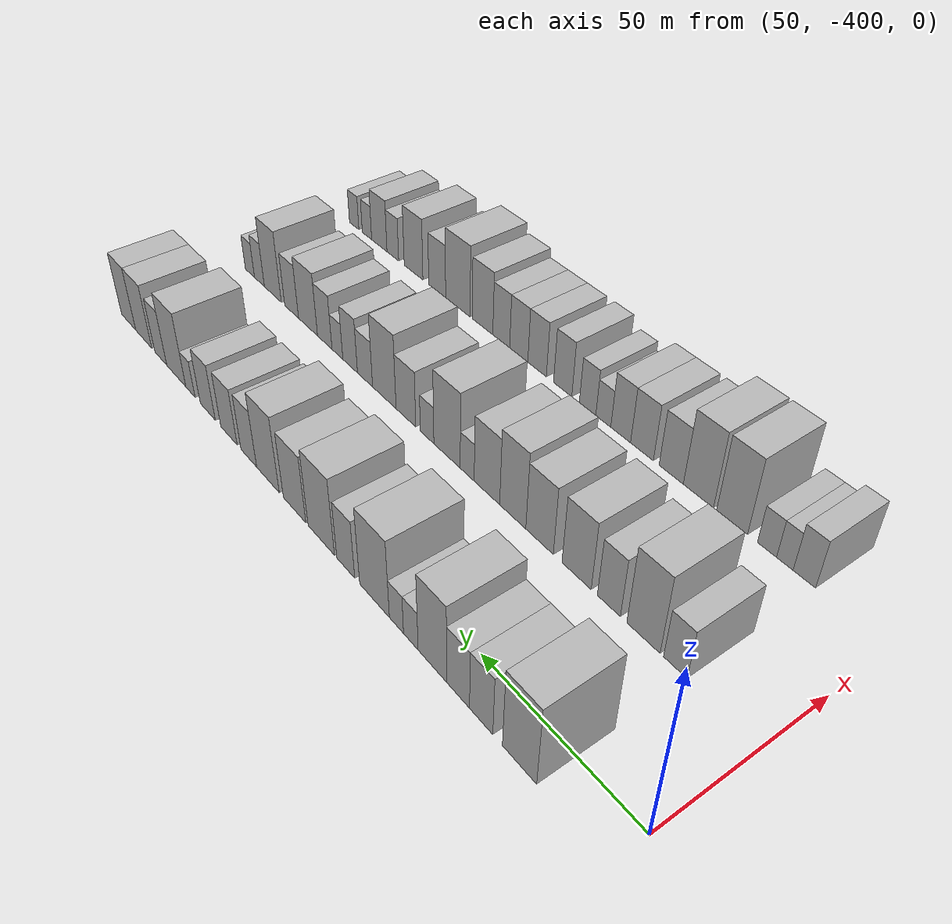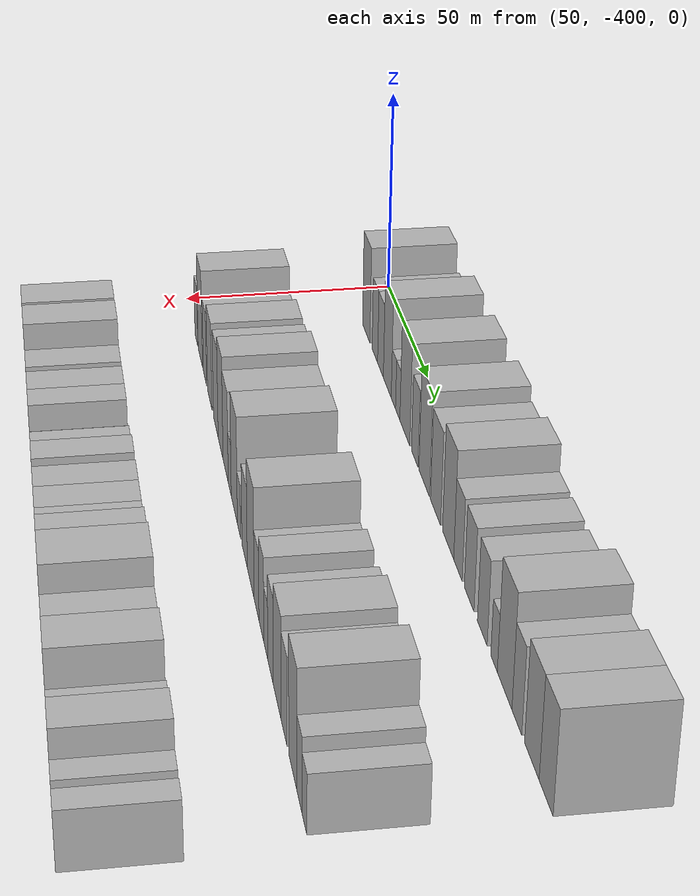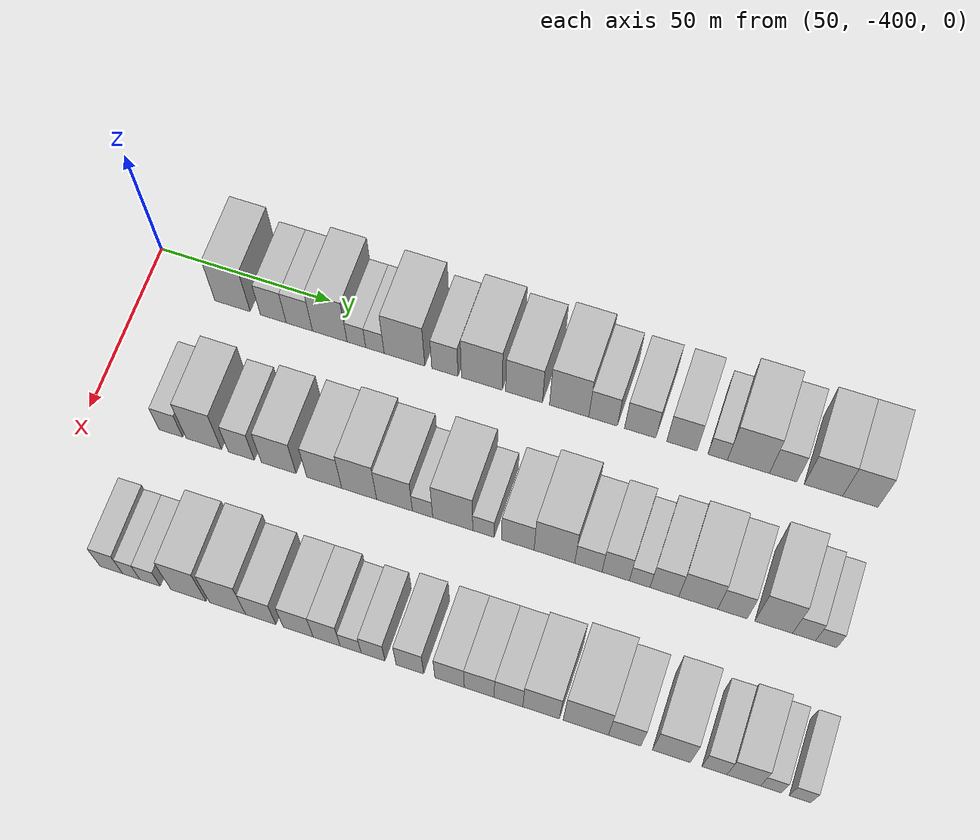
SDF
<sdf version="1.6">
 <world name="default">
  <model name="building_1">
   <static>1</static>
   <pose>50.0000 -374.8134 0 0.000000 0.000000 0.000000</pose>
   <link name="link">
    <pose>0 0 12.00 0 0 0</pose>
    <collision name="collision"><geometry><box><size>20.0000 10.3733 24.0000</size></box></geometry></collision>
    <visual name="visual">
     <cast_shadows>0</cast_shadows>
     <geometry><box><size>20.0000 10.3733 24.0000</size></box></geometry>
     <material>
      <script>
       <uri>model://HANNAS_wall/materials/scripts</uri>
       <uri>model://HANNAS_wall/materials/textures</uri>
       <name>vrc/HANNAS_wall</name>
      </script>
     </material>
    </visual>
   </link>
  </model>
  <model name="building_2">
   <static>1</static>
   <pose>50.0000 -362.8663 0 0.000000 0.000000 0.000000</pose>
   <link name="link">
    <pose>0 0 9.00 0 0 0</pose>
    <collision name="collision"><geometry><box><size>20.0000 7.5209 18.0000</size></box></geometry></collision>
    <visual name="visual">
     <cast_shadows>0</cast_shadows>
     <geometry><box><size>20.0000 7.5209 18.0000</size></box></geometry>
     <material>
      <script>
       <uri>model://HANNAS_wall/materials/scripts</uri>
       <uri>model://HANNAS_wall/materials/textures</uri>
       <name>vrc/HANNAS_wall</name>
      </script>
     </material>
    </visual>
   </link>
  </model>
  <model name="building_3">
   <static>1</static>
   <pose>50.0000 -355.2702 0 0.000000 0.000000 0.000000</pose>
   <link name="link">
    <pose>0 0 9.00 0 0 0</pose>
    <collision name="collision"><geometry><box><size>20.0000 7.6712 18.0000</size></box></geometry></collision>
    <visual name="visual">
     <cast_shadows>0</cast_shadows>
     <geometry><box><size>20.0000 7.6712 18.0000</size></box></geometry>
     <material>
      <script>
       <uri>model://HANNAS_wall/materials/scripts</uri>
       <uri>model://HANNAS_wall/materials/textures</uri>
       <name>vrc/HANNAS_wall</name>
      </script>
     </material>
    </visual>
   </link>
  </model>
  <model name="building_4">
   <static>1</static>
   <pose>50.0000 -346.3979 0 0.000000 0.000000 0.000000</pose>
   <link name="link">
    <pose>0 0 12.00 0 0 0</pose>
    <collision name="collision"><geometry><box><size>20.0000 10.0734 24.0000</size></box></geometry></collision>
    <visual name="visual">
     <cast_shadows>0</cast_shadows>
     <geometry><box><size>20.0000 10.0734 24.0000</size></box></geometry>
     <material>
      <script>
       <uri>model://HANNAS_wall/materials/scripts</uri>
       <uri>model://HANNAS_wall/materials/textures</uri>
       <name>vrc/HANNAS_wall</name>
      </script>
     </material>
    </visual>
   </link>
  </model>
  <model name="building_5">
   <static>1</static>
   <pose>50.0000 -338.6810 0 0.000000 0.000000 0.000000</pose>
   <link name="link">
    <pose>0 0 6.00 0 0 0</pose>
    <collision name="collision"><geometry><box><size>20.0000 5.3604 12.0000</size></box></geometry></collision>
    <visual name="visual">
     <cast_shadows>0</cast_shadows>
     <geometry><box><size>20.0000 5.3604 12.0000</size></box></geometry>
     <material>
      <script>
       <uri>model://HANNAS_wall/materials/scripts</uri>
       <uri>model://HANNAS_wall/materials/textures</uri>
       <name>vrc/HANNAS_wall</name>
      </script>
     </material>
    </visual>
   </link>
  </model>
  <model name="building_6">
   <static>1</static>
   <pose>50.0000 -333.3382 0 0.000000 0.000000 0.000000</pose>
   <link name="link">
    <pose>0 0 6.00 0 0 0</pose>
    <collision name="collision"><geometry><box><size>20.0000 5.3252 12.0000</size></box></geometry></collision>
    <visual name="visual">
     <cast_shadows>0</cast_shadows>
     <geometry><box><size>20.0000 5.3252 12.0000</size></box></geometry>
     <material>
      <script>
       <uri>model://HANNAS_wall/materials/scripts</uri>
       <uri>model://HANNAS_wall/materials/textures</uri>
       <name>vrc/HANNAS_wall</name>
      </script>
     </material>
    </visual>
   </link>
  </model>
  <model name="building_7">
   <static>1</static>
   <pose>50.0000 -324.8384 0 0.000000 0.000000 0.000000</pose>
   <link name="link">
    <pose>0 0 12.00 0 0 0</pose>
    <collision name="collision"><geometry><box><size>20.0000 11.6744 24.0000</size></box></geometry></collision>
    <visual name="visual">
     <cast_shadows>0</cast_shadows>
     <geometry><box><size>20.0000 11.6744 24.0000</size></box></geometry>
     <material>
      <script>
       <uri>model://HANNAS_wall/materials/scripts</uri>
       <uri>model://HANNAS_wall/materials/textures</uri>
       <name>vrc/HANNAS_wall</name>
      </script>
     </material>
    </visual>
   </link>
  </model>
  <model name="building_8">
   <static>1</static>
   <pose>50.0000 -313.2694 0 0.000000 0.000000 0.000000</pose>
   <link name="link">
    <pose>0 0 9.00 0 0 0</pose>
    <collision name="collision"><geometry><box><size>20.0000 7.4635 18.0000</size></box></geometry></collision>
    <visual name="visual">
     <cast_shadows>0</cast_shadows>
     <geometry><box><size>20.0000 7.4635 18.0000</size></box></geometry>
     <material>
      <script>
       <uri>model://HANNAS_wall/materials/scripts</uri>
       <uri>model://HANNAS_wall/materials/textures</uri>
       <name>vrc/HANNAS_wall</name>
      </script>
     </material>
    </visual>
   </link>
  </model>
  <model name="building_9">
   <static>1</static>
   <pose>50.0000 -302.7648 0 0.000000 0.000000 0.000000</pose>
   <link name="link">
    <pose>0 0 12.00 0 0 0</pose>
    <collision name="collision"><geometry><box><size>20.0000 11.5457 24.0000</size></box></geometry></collision>
    <visual name="visual">
     <cast_shadows>0</cast_shadows>
     <geometry><box><size>20.0000 11.5457 24.0000</size></box></geometry>
     <material>
      <script>
       <uri>model://HANNAS_wall/materials/scripts</uri>
       <uri>model://HANNAS_wall/materials/textures</uri>
       <name>vrc/HANNAS_wall</name>
      </script>
     </material>
    </visual>
   </link>
  </model>
  <model name="building_10">
   <static>1</static>
   <pose>50.0000 -290.8009 0 0.000000 0.000000 0.000000</pose>
   <link name="link">
    <pose>0 0 10.50 0 0 0</pose>
    <collision name="collision"><geometry><box><size>20.0000 10.3822 21.0000</size></box></geometry></collision>
    <visual name="visual">
     <cast_shadows>0</cast_shadows>
     <geometry><box><size>20.0000 10.3822 21.0000</size></box></geometry>
     <material>
      <script>
       <uri>model://HANNAS_wall/materials/scripts</uri>
       <uri>model://HANNAS_wall/materials/textures</uri>
       <name>vrc/HANNAS_wall</name>
      </script>
     </material>
    </visual>
   </link>
  </model>
  <model name="building_11">
   <static>1</static>
   <pose>50.0000 -278.0995 0 0.000000 0.000000 0.000000</pose>
   <link name="link">
    <pose>0 0 12.00 0 0 0</pose>
    <collision name="collision"><geometry><box><size>20.0000 11.0205 24.0000</size></box></geometry></collision>
    <visual name="visual">
     <cast_shadows>0</cast_shadows>
     <geometry><box><size>20.0000 11.0205 24.0000</size></box></geometry>
     <material>
      <script>
       <uri>model://HANNAS_wall/materials/scripts</uri>
       <uri>model://HANNAS_wall/materials/textures</uri>
       <name>vrc/HANNAS_wall</name>
      </script>
     </material>
    </visual>
   </link>
  </model>
  <model name="building_12">
   <static>1</static>
   <pose>50.0000 -268.5931 0 0.000000 0.000000 0.000000</pose>
   <link name="link">
    <pose>0 0 9.00 0 0 0</pose>
    <collision name="collision"><geometry><box><size>20.0000 7.9923 18.0000</size></box></geometry></collision>
    <visual name="visual">
     <cast_shadows>0</cast_shadows>
     <geometry><box><size>20.0000 7.9923 18.0000</size></box></geometry>
     <material>
      <script>
       <uri>model://HANNAS_wall/materials/scripts</uri>
       <uri>model://HANNAS_wall/materials/textures</uri>
       <name>vrc/HANNAS_wall</name>
      </script>
     </material>
    </visual>
   </link>
  </model>
  <model name="building_13">
   <static>1</static>
   <pose>50.0000 -258.2329 0 0.000000 0.000000 0.000000</pose>
   <link name="link">
    <pose>0 0 9.00 0 0 0</pose>
    <collision name="collision"><geometry><box><size>20.0000 8.7283 18.0000</size></box></geometry></collision>
    <visual name="visual">
     <cast_shadows>0</cast_shadows>
     <geometry><box><size>20.0000 8.7283 18.0000</size></box></geometry>
     <material>
      <script>
       <uri>model://HANNAS_wall/materials/scripts</uri>
       <uri>model://HANNAS_wall/materials/textures</uri>
       <name>vrc/HANNAS_wall</name>
      </script>
     </material>
    </visual>
   </link>
  </model>
  <model name="building_14">
   <static>1</static>
   <pose>50.0000 -246.6707 0 0.000000 0.000000 0.000000</pose>
   <link name="link">
    <pose>0 0 9.00 0 0 0</pose>
    <collision name="collision"><geometry><box><size>20.0000 8.3961 18.0000</size></box></geometry></collision>
    <visual name="visual">
     <cast_shadows>0</cast_shadows>
     <geometry><box><size>20.0000 8.3961 18.0000</size></box></geometry>
     <material>
      <script>
       <uri>model://HANNAS_wall/materials/scripts</uri>
       <uri>model://HANNAS_wall/materials/textures</uri>
       <name>vrc/HANNAS_wall</name>
      </script>
     </material>
    </visual>
   </link>
  </model>
  <model name="building_15">
   <static>1</static>
   <pose>50.0000 -236.7995 0 0.000000 0.000000 0.000000</pose>
   <link name="link">
    <pose>0 0 6.00 0 0 0</pose>
    <collision name="collision"><geometry><box><size>20.0000 5.3462 12.0000</size></box></geometry></collision>
    <visual name="visual">
     <cast_shadows>0</cast_shadows>
     <geometry><box><size>20.0000 5.3462 12.0000</size></box></geometry>
     <material>
      <script>
       <uri>model://HANNAS_wall/materials/scripts</uri>
       <uri>model://HANNAS_wall/materials/textures</uri>
       <name>vrc/HANNAS_wall</name>
      </script>
     </material>
    </visual>
   </link>
  </model>
  <model name="building_16">
   <static>1</static>
   <pose>50.0000 -228.3568 0 0.000000 0.000000 0.000000</pose>
   <link name="link">
    <pose>0 0 12.00 0 0 0</pose>
    <collision name="collision"><geometry><box><size>20.0000 11.5392 24.0000</size></box></geometry></collision>
    <visual name="visual">
     <cast_shadows>0</cast_shadows>
     <geometry><box><size>20.0000 11.5392 24.0000</size></box></geometry>
     <material>
      <script>
       <uri>model://HANNAS_wall/materials/scripts</uri>
       <uri>model://HANNAS_wall/materials/textures</uri>
       <name>vrc/HANNAS_wall</name>
      </script>
     </material>
    </visual>
   </link>
  </model>
  <model name="building_17">
   <static>1</static>
   <pose>50.0000 -218.8502 0 0.000000 0.000000 0.000000</pose>
   <link name="link">
    <pose>0 0 9.00 0 0 0</pose>
    <collision name="collision"><geometry><box><size>20.0000 7.4741 18.0000</size></box></geometry></collision>
    <visual name="visual">
     <cast_shadows>0</cast_shadows>
     <geometry><box><size>20.0000 7.4741 18.0000</size></box></geometry>
     <material>
      <script>
       <uri>model://HANNAS_wall/materials/scripts</uri>
       <uri>model://HANNAS_wall/materials/textures</uri>
       <name>vrc/HANNAS_wall</name>
      </script>
     </material>
    </visual>
   </link>
  </model>
  <model name="building_18">
   <static>1</static>
   <pose>50.0000 -207.8882 0 0.000000 0.000000 0.000000</pose>
   <link name="link">
    <pose>0 0 10.50 0 0 0</pose>
    <collision name="collision"><geometry><box><size>20.0000 10.4499 21.0000</size></box></geometry></collision>
    <visual name="visual">
     <cast_shadows>0</cast_shadows>
     <geometry><box><size>20.0000 10.4499 21.0000</size></box></geometry>
     <material>
      <script>
       <uri>model://HANNAS_wall/materials/scripts</uri>
       <uri>model://HANNAS_wall/materials/textures</uri>
       <name>vrc/HANNAS_wall</name>
      </script>
     </material>
    </visual>
   </link>
  </model>
  <model name="building_19">
   <static>1</static>
   <pose>50.0000 -197.8814 0 0.000000 0.000000 0.000000</pose>
   <link name="link">
    <pose>0 0 10.50 0 0 0</pose>
    <collision name="collision"><geometry><box><size>20.0000 9.5638 21.0000</size></box></geometry></collision>
    <visual name="visual">
     <cast_shadows>0</cast_shadows>
     <geometry><box><size>20.0000 9.5638 21.0000</size></box></geometry>
     <material>
      <script>
       <uri>model://HANNAS_wall/materials/scripts</uri>
       <uri>model://HANNAS_wall/materials/textures</uri>
       <name>vrc/HANNAS_wall</name>
      </script>
     </material>
    </visual>
   </link>
  </model>
  <model name="building_83">
   <static>1</static>
   <pose>90.0000 -376.6022 0 0.000000 0.000000 0.000000</pose>
   <link name="link">
    <pose>0 0 7.50 0 0 0</pose>
    <collision name="collision"><geometry><box><size>20.0000 6.7956 15.0000</size></box></geometry></collision>
    <visual name="visual">
     <cast_shadows>0</cast_shadows>
     <geometry><box><size>20.0000 6.7956 15.0000</size></box></geometry>
     <material>
      <script>
       <uri>model://HANNAS_wall/materials/scripts</uri>
       <uri>model://HANNAS_wall/materials/textures</uri>
       <name>vrc/HANNAS_wall</name>
      </script>
     </material>
    </visual>
   </link>
  </model>
  <model name="building_84">
   <static>1</static>
   <pose>90.0000 -367.1713 0 0.000000 0.000000 0.000000</pose>
   <link name="link">
    <pose>0 0 12.00 0 0 0</pose>
    <collision name="collision"><geometry><box><size>20.0000 10.0661 24.0000</size></box></geometry></collision>
    <visual name="visual">
     <cast_shadows>0</cast_shadows>
     <geometry><box><size>20.0000 10.0661 24.0000</size></box></geometry>
     <material>
      <script>
       <uri>model://HANNAS_wall/materials/scripts</uri>
       <uri>model://HANNAS_wall/materials/textures</uri>
       <name>vrc/HANNAS_wall</name>
      </script>
     </material>
    </visual>
   </link>
  </model>
  <model name="building_85">
   <static>1</static>
   <pose>90.0000 -356.4570 0 0.000000 0.000000 0.000000</pose>
   <link name="link">
    <pose>0 0 9.00 0 0 0</pose>
    <collision name="collision"><geometry><box><size>20.0000 7.3624 18.0000</size></box></geometry></collision>
    <visual name="visual">
     <cast_shadows>0</cast_shadows>
     <geometry><box><size>20.0000 7.3624 18.0000</size></box></geometry>
     <material>
      <script>
       <uri>model://HANNAS_wall/materials/scripts</uri>
       <uri>model://HANNAS_wall/materials/textures</uri>
       <name>vrc/HANNAS_wall</name>
      </script>
     </material>
    </visual>
   </link>
  </model>
  <model name="building_86">
   <static>1</static>
   <pose>90.0000 -345.8668 0 0.000000 0.000000 0.000000</pose>
   <link name="link">
    <pose>0 0 10.50 0 0 0</pose>
    <collision name="collision"><geometry><box><size>20.0000 9.8181 21.0000</size></box></geometry></collision>
    <visual name="visual">
     <cast_shadows>0</cast_shadows>
     <geometry><box><size>20.0000 9.8181 21.0000</size></box></geometry>
     <material>
      <script>
       <uri>model://HANNAS_wall/materials/scripts</uri>
       <uri>model://HANNAS_wall/materials/textures</uri>
       <name>vrc/HANNAS_wall</name>
      </script>
     </material>
    </visual>
   </link>
  </model>
  <model name="building_87">
   <static>1</static>
   <pose>90.0000 -333.0417 0 0.000000 0.000000 0.000000</pose>
   <link name="link">
    <pose>0 0 10.50 0 0 0</pose>
    <collision name="collision"><geometry><box><size>20.0000 9.8319 21.0000</size></box></geometry></collision>
    <visual name="visual">
     <cast_shadows>0</cast_shadows>
     <geometry><box><size>20.0000 9.8319 21.0000</size></box></geometry>
     <material>
      <script>
       <uri>model://HANNAS_wall/materials/scripts</uri>
       <uri>model://HANNAS_wall/materials/textures</uri>
       <name>vrc/HANNAS_wall</name>
      </script>
     </material>
    </visual>
   </link>
  </model>
  <model name="building_88">
   <static>1</static>
   <pose>90.0000 -323.2352 0 0.000000 0.000000 0.000000</pose>
   <link name="link">
    <pose>0 0 12.00 0 0 0</pose>
    <collision name="collision"><geometry><box><size>20.0000 9.7812 24.0000</size></box></geometry></collision>
    <visual name="visual">
     <cast_shadows>0</cast_shadows>
     <geometry><box><size>20.0000 9.7812 24.0000</size></box></geometry>
     <material>
      <script>
       <uri>model://HANNAS_wall/materials/scripts</uri>
       <uri>model://HANNAS_wall/materials/textures</uri>
       <name>vrc/HANNAS_wall</name>
      </script>
     </material>
    </visual>
   </link>
  </model>
  <model name="building_89">
   <static>1</static>
   <pose>90.0000 -313.3641 0 0.000000 0.000000 0.000000</pose>
   <link name="link">
    <pose>0 0 10.50 0 0 0</pose>
    <collision name="collision"><geometry><box><size>20.0000 9.9609 21.0000</size></box></geometry></collision>
    <visual name="visual">
     <cast_shadows>0</cast_shadows>
     <geometry><box><size>20.0000 9.9609 21.0000</size></box></geometry>
     <material>
      <script>
       <uri>model://HANNAS_wall/materials/scripts</uri>
       <uri>model://HANNAS_wall/materials/textures</uri>
       <name>vrc/HANNAS_wall</name>
      </script>
     </material>
    </visual>
   </link>
  </model>
  <model name="building_90">
   <static>1</static>
   <pose>90.0000 -305.5703 0 0.000000 0.000000 0.000000</pose>
   <link name="link">
    <pose>0 0 6.00 0 0 0</pose>
    <collision name="collision"><geometry><box><size>20.0000 5.6266 12.0000</size></box></geometry></collision>
    <visual name="visual">
     <cast_shadows>0</cast_shadows>
     <geometry><box><size>20.0000 5.6266 12.0000</size></box></geometry>
     <material>
      <script>
       <uri>model://HANNAS_wall/materials/scripts</uri>
       <uri>model://HANNAS_wall/materials/textures</uri>
       <name>vrc/HANNAS_wall</name>
      </script>
     </material>
    </visual>
   </link>
  </model>
  <model name="building_91">
   <static>1</static>
   <pose>90.0000 -297.2302 0 0.000000 0.000000 0.000000</pose>
   <link name="link">
    <pose>0 0 12.00 0 0 0</pose>
    <collision name="collision"><geometry><box><size>20.0000 11.0537 24.0000</size></box></geometry></collision>
    <visual name="visual">
     <cast_shadows>0</cast_shadows>
     <geometry><box><size>20.0000 11.0537 24.0000</size></box></geometry>
     <material>
      <script>
       <uri>model://HANNAS_wall/materials/scripts</uri>
       <uri>model://HANNAS_wall/materials/textures</uri>
       <name>vrc/HANNAS_wall</name>
      </script>
     </material>
    </visual>
   </link>
  </model>
  <model name="building_92">
   <static>1</static>
   <pose>90.0000 -288.7596 0 0.000000 0.000000 0.000000</pose>
   <link name="link">
    <pose>0 0 6.00 0 0 0</pose>
    <collision name="collision"><geometry><box><size>20.0000 5.8874 12.0000</size></box></geometry></collision>
    <visual name="visual">
     <cast_shadows>0</cast_shadows>
     <geometry><box><size>20.0000 5.8874 12.0000</size></box></geometry>
     <material>
      <script>
       <uri>model://HANNAS_wall/materials/scripts</uri>
       <uri>model://HANNAS_wall/materials/textures</uri>
       <name>vrc/HANNAS_wall</name>
      </script>
     </material>
    </visual>
   </link>
  </model>
  <model name="building_93">
   <static>1</static>
   <pose>90.0000 -279.3601 0 0.000000 0.000000 0.000000</pose>
   <link name="link">
    <pose>0 0 9.00 0 0 0</pose>
    <collision name="collision"><geometry><box><size>20.0000 8.9115 18.0000</size></box></geometry></collision>
    <visual name="visual">
     <cast_shadows>0</cast_shadows>
     <geometry><box><size>20.0000 8.9115 18.0000</size></box></geometry>
     <material>
      <script>
       <uri>model://HANNAS_wall/materials/scripts</uri>
       <uri>model://HANNAS_wall/materials/textures</uri>
       <name>vrc/HANNAS_wall</name>
      </script>
     </material>
    </visual>
   </link>
  </model>
  <model name="building_94">
   <static>1</static>
   <pose>90.0000 -269.3649 0 0.000000 0.000000 0.000000</pose>
   <link name="link">
    <pose>0 0 12.00 0 0 0</pose>
    <collision name="collision"><geometry><box><size>20.0000 11.0789 24.0000</size></box></geometry></collision>
    <visual name="visual">
     <cast_shadows>0</cast_shadows>
     <geometry><box><size>20.0000 11.0789 24.0000</size></box></geometry>
     <material>
      <script>
       <uri>model://HANNAS_wall/materials/scripts</uri>
       <uri>model://HANNAS_wall/materials/textures</uri>
       <name>vrc/HANNAS_wall</name>
      </script>
     </material>
    </visual>
   </link>
  </model>
  <model name="building_95">
   <static>1</static>
   <pose>90.0000 -260.1246 0 0.000000 0.000000 0.000000</pose>
   <link name="link">
    <pose>0 0 7.50 0 0 0</pose>
    <collision name="collision"><geometry><box><size>20.0000 7.4017 15.0000</size></box></geometry></collision>
    <visual name="visual">
     <cast_shadows>0</cast_shadows>
     <geometry><box><size>20.0000 7.4017 15.0000</size></box></geometry>
     <material>
      <script>
       <uri>model://HANNAS_wall/materials/scripts</uri>
       <uri>model://HANNAS_wall/materials/textures</uri>
       <name>vrc/HANNAS_wall</name>
      </script>
     </material>
    </visual>
   </link>
  </model>
  <model name="building_96">
   <static>1</static>
   <pose>90.0000 -252.7368 0 0.000000 0.000000 0.000000</pose>
   <link name="link">
    <pose>0 0 9.00 0 0 0</pose>
    <collision name="collision"><geometry><box><size>20.0000 7.3741 18.0000</size></box></geometry></collision>
    <visual name="visual">
     <cast_shadows>0</cast_shadows>
     <geometry><box><size>20.0000 7.3741 18.0000</size></box></geometry>
     <material>
      <script>
       <uri>model://HANNAS_wall/materials/scripts</uri>
       <uri>model://HANNAS_wall/materials/textures</uri>
       <name>vrc/HANNAS_wall</name>
      </script>
     </material>
    </visual>
   </link>
  </model>
  <model name="building_97">
   <static>1</static>
   <pose>90.0000 -246.2502 0 0.000000 0.000000 0.000000</pose>
   <link name="link">
    <pose>0 0 6.00 0 0 0</pose>
    <collision name="collision"><geometry><box><size>20.0000 5.5991 12.0000</size></box></geometry></collision>
    <visual name="visual">
     <cast_shadows>0</cast_shadows>
     <geometry><box><size>20.0000 5.5991 12.0000</size></box></geometry>
     <material>
      <script>
       <uri>model://HANNAS_wall/materials/scripts</uri>
       <uri>model://HANNAS_wall/materials/textures</uri>
       <name>vrc/HANNAS_wall</name>
      </script>
     </material>
    </visual>
   </link>
  </model>
  <model name="building_98">
   <static>1</static>
   <pose>90.0000 -239.6065 0 0.000000 0.000000 0.000000</pose>
   <link name="link">
    <pose>0 0 9.00 0 0 0</pose>
    <collision name="collision"><geometry><box><size>20.0000 7.6883 18.0000</size></box></geometry></collision>
    <visual name="visual">
     <cast_shadows>0</cast_shadows>
     <geometry><box><size>20.0000 7.6883 18.0000</size></box></geometry>
     <material>
      <script>
       <uri>model://HANNAS_wall/materials/scripts</uri>
       <uri>model://HANNAS_wall/materials/textures</uri>
       <name>vrc/HANNAS_wall</name>
      </script>
     </material>
    </visual>
   </link>
  </model>
  <model name="building_99">
   <static>1</static>
   <pose>90.0000 -230.5441 0 0.000000 0.000000 0.000000</pose>
   <link name="link">
    <pose>0 0 10.50 0 0 0</pose>
    <collision name="collision"><geometry><box><size>20.0000 10.4366 21.0000</size></box></geometry></collision>
    <visual name="visual">
     <cast_shadows>0</cast_shadows>
     <geometry><box><size>20.0000 10.4366 21.0000</size></box></geometry>
     <material>
      <script>
       <uri>model://HANNAS_wall/materials/scripts</uri>
       <uri>model://HANNAS_wall/materials/textures</uri>
       <name>vrc/HANNAS_wall</name>
      </script>
     </material>
    </visual>
   </link>
  </model>
  <model name="building_100">
   <static>1</static>
   <pose>90.0000 -221.4091 0 0.000000 0.000000 0.000000</pose>
   <link name="link">
    <pose>0 0 9.00 0 0 0</pose>
    <collision name="collision"><geometry><box><size>20.0000 7.8334 18.0000</size></box></geometry></collision>
    <visual name="visual">
     <cast_shadows>0</cast_shadows>
     <geometry><box><size>20.0000 7.8334 18.0000</size></box></geometry>
     <material>
      <script>
       <uri>model://HANNAS_wall/materials/scripts</uri>
       <uri>model://HANNAS_wall/materials/textures</uri>
       <name>vrc/HANNAS_wall</name>
      </script>
     </material>
    </visual>
   </link>
  </model>
  <model name="building_101">
   <static>1</static>
   <pose>90.0000 -210.4926 0 0.000000 0.000000 0.000000</pose>
   <link name="link">
    <pose>0 0 12.00 0 0 0</pose>
    <collision name="collision"><geometry><box><size>20.0000 9.9996 24.0000</size></box></geometry></collision>
    <visual name="visual">
     <cast_shadows>0</cast_shadows>
     <geometry><box><size>20.0000 9.9996 24.0000</size></box></geometry>
     <material>
      <script>
       <uri>model://HANNAS_wall/materials/scripts</uri>
       <uri>model://HANNAS_wall/materials/textures</uri>
       <name>vrc/HANNAS_wall</name>
      </script>
     </material>
    </visual>
   </link>
  </model>
  <model name="building_102">
   <static>1</static>
   <pose>90.0000 -202.4703 0 0.000000 0.000000 0.000000</pose>
   <link name="link">
    <pose>0 0 7.50 0 0 0</pose>
    <collision name="collision"><geometry><box><size>20.0000 6.0449 15.0000</size></box></geometry></collision>
    <visual name="visual">
     <cast_shadows>0</cast_shadows>
     <geometry><box><size>20.0000 6.0449 15.0000</size></box></geometry>
     <material>
      <script>
       <uri>model://HANNAS_wall/materials/scripts</uri>
       <uri>model://HANNAS_wall/materials/textures</uri>
       <name>vrc/HANNAS_wall</name>
      </script>
     </material>
    </visual>
   </link>
  </model>
  <model name="building_103">
   <static>1</static>
   <pose>90.0000 -196.6282 0 0.000000 0.000000 0.000000</pose>
   <link name="link">
    <pose>0 0 6.00 0 0 0</pose>
    <collision name="collision"><geometry><box><size>20.0000 5.6393 12.0000</size></box></geometry></collision>
    <visual name="visual">
     <cast_shadows>0</cast_shadows>
     <geometry><box><size>20.0000 5.6393 12.0000</size></box></geometry>
     <material>
      <script>
       <uri>model://HANNAS_wall/materials/scripts</uri>
       <uri>model://HANNAS_wall/materials/textures</uri>
       <name>vrc/HANNAS_wall</name>
      </script>
     </material>
    </visual>
   </link>
  </model>
  <model name="building_167">
   <static>1</static>
   <pose>130.0000 -376.8095 0 0.000000 0.000000 0.000000</pose>
   <link name="link">
    <pose>0 0 7.50 0 0 0</pose>
    <collision name="collision"><geometry><box><size>20.0000 6.3810 15.0000</size></box></geometry></collision>
    <visual name="visual">
     <cast_shadows>0</cast_shadows>
     <geometry><box><size>20.0000 6.3810 15.0000</size></box></geometry>
     <material>
      <script>
       <uri>model://HANNAS_wall/materials/scripts</uri>
       <uri>model://HANNAS_wall/materials/textures</uri>
       <name>vrc/HANNAS_wall</name>
      </script>
     </material>
    </visual>
   </link>
  </model>
  <model name="building_168">
   <static>1</static>
   <pose>130.0000 -371.2183 0 0.000000 0.000000 0.000000</pose>
   <link name="link">
    <pose>0 0 6.00 0 0 0</pose>
    <collision name="collision"><geometry><box><size>20.0000 4.8015 12.0000</size></box></geometry></collision>
    <visual name="visual">
     <cast_shadows>0</cast_shadows>
     <geometry><box><size>20.0000 4.8015 12.0000</size></box></geometry>
     <material>
      <script>
       <uri>model://HANNAS_wall/materials/scripts</uri>
       <uri>model://HANNAS_wall/materials/textures</uri>
       <name>vrc/HANNAS_wall</name>
      </script>
     </material>
    </visual>
   </link>
  </model>
  <model name="building_169">
   <static>1</static>
   <pose>130.0000 -365.9735 0 0.000000 0.000000 0.000000</pose>
   <link name="link">
    <pose>0 0 6.00 0 0 0</pose>
    <collision name="collision"><geometry><box><size>20.0000 5.6879 12.0000</size></box></geometry></collision>
    <visual name="visual">
     <cast_shadows>0</cast_shadows>
     <geometry><box><size>20.0000 5.6879 12.0000</size></box></geometry>
     <material>
      <script>
       <uri>model://HANNAS_wall/materials/scripts</uri>
       <uri>model://HANNAS_wall/materials/textures</uri>
       <name>vrc/HANNAS_wall</name>
      </script>
     </material>
    </visual>
   </link>
  </model>
  <model name="building_170">
   <static>1</static>
   <pose>130.0000 -355.2750 0 0.000000 0.000000 0.000000</pose>
   <link name="link">
    <pose>0 0 12.00 0 0 0</pose>
    <collision name="collision"><geometry><box><size>20.0000 9.7091 24.0000</size></box></geometry></collision>
    <visual name="visual">
     <cast_shadows>0</cast_shadows>
     <geometry><box><size>20.0000 9.7091 24.0000</size></box></geometry>
     <material>
      <script>
       <uri>model://HANNAS_wall/materials/scripts</uri>
       <uri>model://HANNAS_wall/materials/textures</uri>
       <name>vrc/HANNAS_wall</name>
      </script>
     </material>
    </visual>
   </link>
  </model>
  <model name="building_171">
   <static>1</static>
   <pose>130.0000 -344.4594 0 0.000000 0.000000 0.000000</pose>
   <link name="link">
    <pose>0 0 12.00 0 0 0</pose>
    <collision name="collision"><geometry><box><size>20.0000 9.9220 24.0000</size></box></geometry></collision>
    <visual name="visual">
     <cast_shadows>0</cast_shadows>
     <geometry><box><size>20.0000 9.9220 24.0000</size></box></geometry>
     <material>
      <script>
       <uri>model://HANNAS_wall/materials/scripts</uri>
       <uri>model://HANNAS_wall/materials/textures</uri>
       <name>vrc/HANNAS_wall</name>
      </script>
     </material>
    </visual>
   </link>
  </model>
  <model name="building_172">
   <static>1</static>
   <pose>130.0000 -335.3449 0 0.000000 0.000000 0.000000</pose>
   <link name="link">
    <pose>0 0 9.00 0 0 0</pose>
    <collision name="collision"><geometry><box><size>20.0000 8.3071 18.0000</size></box></geometry></collision>
    <visual name="visual">
     <cast_shadows>0</cast_shadows>
     <geometry><box><size>20.0000 8.3071 18.0000</size></box></geometry>
     <material>
      <script>
       <uri>model://HANNAS_wall/materials/scripts</uri>
       <uri>model://HANNAS_wall/materials/textures</uri>
       <name>vrc/HANNAS_wall</name>
      </script>
     </material>
    </visual>
   </link>
  </model>
  <model name="building_173">
   <static>1</static>
   <pose>130.0000 -325.1059 0 0.000000 0.000000 0.000000</pose>
   <link name="link">
    <pose>0 0 9.00 0 0 0</pose>
    <collision name="collision"><geometry><box><size>20.0000 8.1710 18.0000</size></box></geometry></collision>
    <visual name="visual">
     <cast_shadows>0</cast_shadows>
     <geometry><box><size>20.0000 8.1710 18.0000</size></box></geometry>
     <material>
      <script>
       <uri>model://HANNAS_wall/materials/scripts</uri>
       <uri>model://HANNAS_wall/materials/textures</uri>
       <name>vrc/HANNAS_wall</name>
      </script>
     </material>
    </visual>
   </link>
  </model>
  <model name="building_174">
   <static>1</static>
   <pose>130.0000 -317.3619 0 0.000000 0.000000 0.000000</pose>
   <link name="link">
    <pose>0 0 9.00 0 0 0</pose>
    <collision name="collision"><geometry><box><size>20.0000 7.3170 18.0000</size></box></geometry></collision>
    <visual name="visual">
     <cast_shadows>0</cast_shadows>
     <geometry><box><size>20.0000 7.3170 18.0000</size></box></geometry>
     <material>
      <script>
       <uri>model://HANNAS_wall/materials/scripts</uri>
       <uri>model://HANNAS_wall/materials/textures</uri>
       <name>vrc/HANNAS_wall</name>
      </script>
     </material>
    </visual>
   </link>
  </model>
  <model name="building_175">
   <static>1</static>
   <pose>130.0000 -310.8567 0 0.000000 0.000000 0.000000</pose>
   <link name="link">
    <pose>0 0 6.00 0 0 0</pose>
    <collision name="collision"><geometry><box><size>20.0000 5.6935 12.0000</size></box></geometry></collision>
    <visual name="visual">
     <cast_shadows>0</cast_shadows>
     <geometry><box><size>20.0000 5.6935 12.0000</size></box></geometry>
     <material>
      <script>
       <uri>model://HANNAS_wall/materials/scripts</uri>
       <uri>model://HANNAS_wall/materials/textures</uri>
       <name>vrc/HANNAS_wall</name>
      </script>
     </material>
    </visual>
   </link>
  </model>
  <model name="building_176">
   <static>1</static>
   <pose>130.0000 -304.8024 0 0.000000 0.000000 0.000000</pose>
   <link name="link">
    <pose>0 0 7.50 0 0 0</pose>
    <collision name="collision"><geometry><box><size>20.0000 6.4151 15.0000</size></box></geometry></collision>
    <visual name="visual">
     <cast_shadows>0</cast_shadows>
     <geometry><box><size>20.0000 6.4151 15.0000</size></box></geometry>
     <material>
      <script>
       <uri>model://HANNAS_wall/materials/scripts</uri>
       <uri>model://HANNAS_wall/materials/textures</uri>
       <name>vrc/HANNAS_wall</name>
      </script>
     </material>
    </visual>
   </link>
  </model>
  <model name="building_177">
   <static>1</static>
   <pose>130.0000 -294.8944 0 0.000000 0.000000 0.000000</pose>
   <link name="link">
    <pose>0 0 9.00 0 0 0</pose>
    <collision name="collision"><geometry><box><size>20.0000 7.4010 18.0000</size></box></geometry></collision>
    <visual name="visual">
     <cast_shadows>0</cast_shadows>
     <geometry><box><size>20.0000 7.4010 18.0000</size></box></geometry>
     <material>
      <script>
       <uri>model://HANNAS_wall/materials/scripts</uri>
       <uri>model://HANNAS_wall/materials/textures</uri>
       <name>vrc/HANNAS_wall</name>
      </script>
     </material>
    </visual>
   </link>
  </model>
  <model name="building_178">
   <static>1</static>
   <pose>130.0000 -284.2657 0 0.000000 0.000000 0.000000</pose>
   <link name="link">
    <pose>0 0 9.00 0 0 0</pose>
    <collision name="collision"><geometry><box><size>20.0000 7.8565 18.0000</size></box></geometry></collision>
    <visual name="visual">
     <cast_shadows>0</cast_shadows>
     <geometry><box><size>20.0000 7.8565 18.0000</size></box></geometry>
     <material>
      <script>
       <uri>model://HANNAS_wall/materials/scripts</uri>
       <uri>model://HANNAS_wall/materials/textures</uri>
       <name>vrc/HANNAS_wall</name>
      </script>
     </material>
    </visual>
   </link>
  </model>
  <model name="building_179">
   <static>1</static>
   <pose>130.0000 -276.3596 0 0.000000 0.000000 0.000000</pose>
   <link name="link">
    <pose>0 0 9.00 0 0 0</pose>
    <collision name="collision"><geometry><box><size>20.0000 7.9558 18.0000</size></box></geometry></collision>
    <visual name="visual">
     <cast_shadows>0</cast_shadows>
     <geometry><box><size>20.0000 7.9558 18.0000</size></box></geometry>
     <material>
      <script>
       <uri>model://HANNAS_wall/materials/scripts</uri>
       <uri>model://HANNAS_wall/materials/textures</uri>
       <name>vrc/HANNAS_wall</name>
      </script>
     </material>
    </visual>
   </link>
  </model>
  <model name="building_180">
   <static>1</static>
   <pose>130.0000 -268.5925 0 0.000000 0.000000 0.000000</pose>
   <link name="link">
    <pose>0 0 9.00 0 0 0</pose>
    <collision name="collision"><geometry><box><size>20.0000 7.5783 18.0000</size></box></geometry></collision>
    <visual name="visual">
     <cast_shadows>0</cast_shadows>
     <geometry><box><size>20.0000 7.5783 18.0000</size></box></geometry>
     <material>
      <script>
       <uri>model://HANNAS_wall/materials/scripts</uri>
       <uri>model://HANNAS_wall/materials/textures</uri>
       <name>vrc/HANNAS_wall</name>
      </script>
     </material>
    </visual>
   </link>
  </model>
  <model name="building_181">
   <static>1</static>
   <pose>130.0000 -259.9926 0 0.000000 0.000000 0.000000</pose>
   <link name="link">
    <pose>0 0 10.50 0 0 0</pose>
    <collision name="collision"><geometry><box><size>20.0000 9.6215 21.0000</size></box></geometry></collision>
    <visual name="visual">
     <cast_shadows>0</cast_shadows>
     <geometry><box><size>20.0000 9.6215 21.0000</size></box></geometry>
     <material>
      <script>
       <uri>model://HANNAS_wall/materials/scripts</uri>
       <uri>model://HANNAS_wall/materials/textures</uri>
       <name>vrc/HANNAS_wall</name>
      </script>
     </material>
    </visual>
   </link>
  </model>
  <model name="building_182">
   <static>1</static>
   <pose>130.0000 -248.2557 0 0.000000 0.000000 0.000000</pose>
   <link name="link">
    <pose>0 0 12.00 0 0 0</pose>
    <collision name="collision"><geometry><box><size>20.0000 11.8523 24.0000</size></box></geometry></collision>
    <visual name="visual">
     <cast_shadows>0</cast_shadows>
     <geometry><box><size>20.0000 11.8523 24.0000</size></box></geometry>
     <material>
      <script>
       <uri>model://HANNAS_wall/materials/scripts</uri>
       <uri>model://HANNAS_wall/materials/textures</uri>
       <name>vrc/HANNAS_wall</name>
      </script>
     </material>
    </visual>
   </link>
  </model>
  <model name="building_183">
   <static>1</static>
   <pose>130.0000 -238.0745 0 0.000000 0.000000 0.000000</pose>
   <link name="link">
    <pose>0 0 9.00 0 0 0</pose>
    <collision name="collision"><geometry><box><size>20.0000 8.5102 18.0000</size></box></geometry></collision>
    <visual name="visual">
     <cast_shadows>0</cast_shadows>
     <geometry><box><size>20.0000 8.5102 18.0000</size></box></geometry>
     <material>
      <script>
       <uri>model://HANNAS_wall/materials/scripts</uri>
       <uri>model://HANNAS_wall/materials/textures</uri>
       <name>vrc/HANNAS_wall</name>
      </script>
     </material>
    </visual>
   </link>
  </model>
  <model name="building_184">
   <static>1</static>
   <pose>130.0000 -225.8971 0 0.000000 0.000000 0.000000</pose>
   <link name="link">
    <pose>0 0 10.50 0 0 0</pose>
    <collision name="collision"><geometry><box><size>20.0000 9.8445 21.0000</size></box></geometry></collision>
    <visual name="visual">
     <cast_shadows>0</cast_shadows>
     <geometry><box><size>20.0000 9.8445 21.0000</size></box></geometry>
     <material>
      <script>
       <uri>model://HANNAS_wall/materials/scripts</uri>
       <uri>model://HANNAS_wall/materials/textures</uri>
       <name>vrc/HANNAS_wall</name>
      </script>
     </material>
    </visual>
   </link>
  </model>
  <model name="building_185">
   <static>1</static>
   <pose>130.0000 -214.7678 0 0.000000 0.000000 0.000000</pose>
   <link name="link">
    <pose>0 0 7.50 0 0 0</pose>
    <collision name="collision"><geometry><box><size>20.0000 6.4142 15.0000</size></box></geometry></collision>
    <visual name="visual">
     <cast_shadows>0</cast_shadows>
     <geometry><box><size>20.0000 6.4142 15.0000</size></box></geometry>
     <material>
      <script>
       <uri>model://HANNAS_wall/materials/scripts</uri>
       <uri>model://HANNAS_wall/materials/textures</uri>
       <name>vrc/HANNAS_wall</name>
      </script>
     </material>
    </visual>
   </link>
  </model>
  <model name="building_186">
   <static>1</static>
   <pose>130.0000 -207.2532 0 0.000000 0.000000 0.000000</pose>
   <link name="link">
    <pose>0 0 9.00 0 0 0</pose>
    <collision name="collision"><geometry><box><size>20.0000 8.6151 18.0000</size></box></geometry></collision>
    <visual name="visual">
     <cast_shadows>0</cast_shadows>
     <geometry><box><size>20.0000 8.6151 18.0000</size></box></geometry>
     <material>
      <script>
       <uri>model://HANNAS_wall/materials/scripts</uri>
       <uri>model://HANNAS_wall/materials/textures</uri>
       <name>vrc/HANNAS_wall</name>
      </script>
     </material>
    </visual>
   </link>
  </model>
  <model name="building_187">
   <static>1</static>
   <pose>130.0000 -200.2462 0 0.000000 0.000000 0.000000</pose>
   <link name="link">
    <pose>0 0 6.00 0 0 0</pose>
    <collision name="collision"><geometry><box><size>20.0000 5.3988 12.0000</size></box></geometry></collision>
    <visual name="visual">
     <cast_shadows>0</cast_shadows>
     <geometry><box><size>20.0000 5.3988 12.0000</size></box></geometry>
     <material>
      <script>
       <uri>model://HANNAS_wall/materials/scripts</uri>
       <uri>model://HANNAS_wall/materials/textures</uri>
       <name>vrc/HANNAS_wall</name>
      </script>
     </material>
    </visual>
   </link>
  </model>
  <model name="building_188">
   <static>1</static>
   <pose>130.0000 -192.7887 0 0.000000 0.000000 0.000000</pose>
   <link name="link">
    <pose>0 0 6.00 0 0 0</pose>
    <collision name="collision"><geometry><box><size>20.0000 5.5162 12.0000</size></box></geometry></collision>
    <visual name="visual">
     <cast_shadows>0</cast_shadows>
     <geometry><box><size>20.0000 5.5162 12.0000</size></box></geometry>
     <material>
      <script>
       <uri>model://HANNAS_wall/materials/scripts</uri>
       <uri>model://HANNAS_wall/materials/textures</uri>
       <name>vrc/HANNAS_wall</name>
      </script>
     </material>
    </visual>
   </link>
  </model>
 </world>
</sdf>
